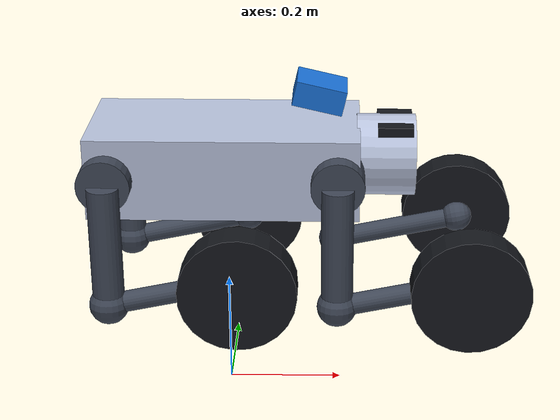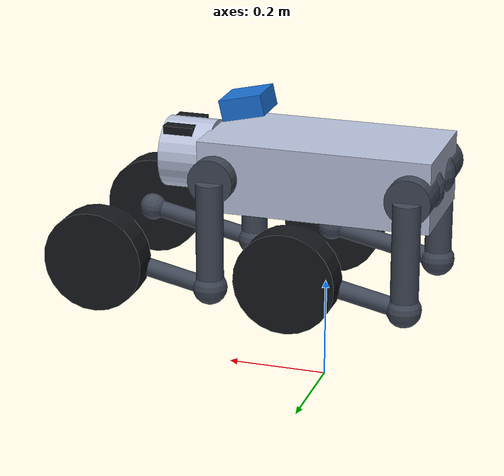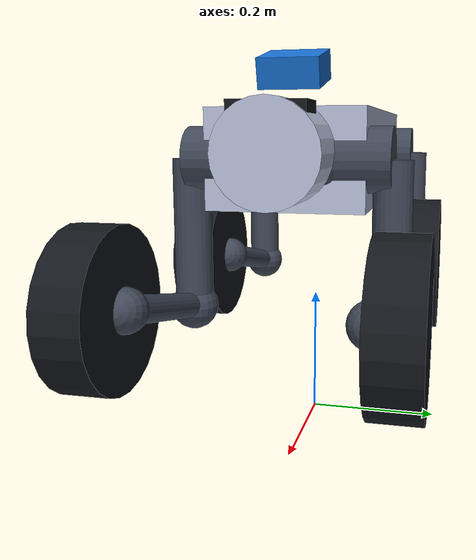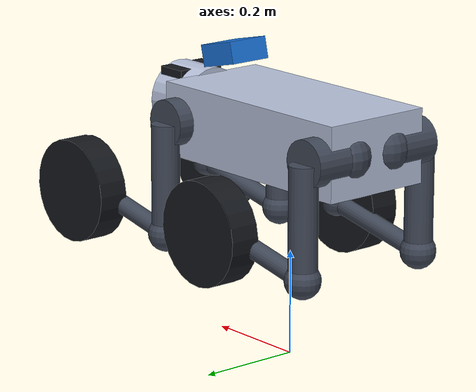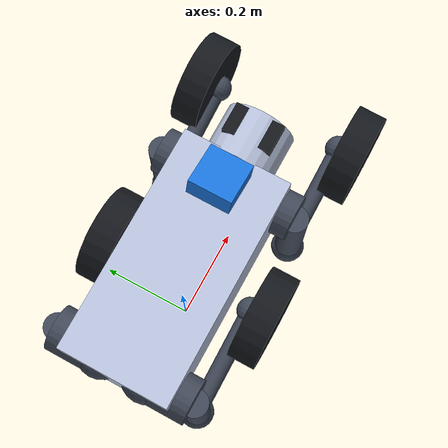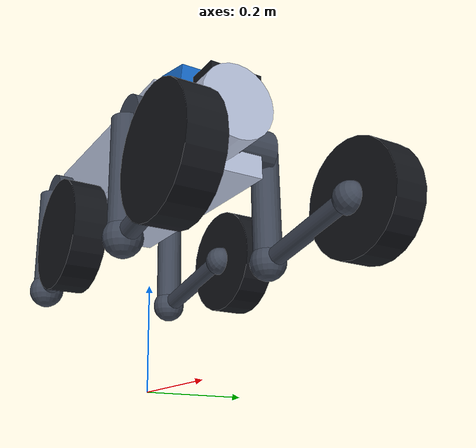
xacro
<?xml version="1.0"?>
<robot xmlns:xacro="http://www.ros.org/wiki/xacro" name="go2w_nav_sim">
  <xacro:arg name="camera" default="true"/>
  <xacro:arg name="depth" default="true"/>
  <xacro:arg name="physics" default="false"/>
  <xacro:arg name="control" default="true"/>
  <!-- false: lightweight stick visuals; true: detailed Go2-W reference meshes.
       Collision and inertial geometry remain lightweight in both modes. -->
  <xacro:arg name="official_visual" default="false"/>
  <xacro:property name="sim_pi" value="3.141592653589793"/>

  <material name="body"><color rgba="0.72 0.76 0.86 1"/></material>
  <material name="dark"><color rgba="0.08 0.09 0.11 1"/></material>
  <material name="leg"><color rgba="0.25 0.28 0.34 1"/></material>
  <material name="sensor"><color rgba="0.10 0.45 0.85 1"/></material>

  <xacro:macro name="box_inertial" params="mass x y z">
    <inertial><mass value="${mass}"/><origin xyz="0 0 0"/>
      <inertia ixx="${mass*(y*y+z*z)/12}" ixy="0" ixz="0"
               iyy="${mass*(x*x+z*z)/12}" iyz="0" izz="${mass*(x*x+y*y)/12}"/>
    </inertial>
  </xacro:macro>

  <xacro:macro name="cylinder_inertial" params="mass radius length">
    <inertial><mass value="${mass}"/><origin xyz="0 0 0"/>
      <inertia ixx="${mass*(3*radius*radius+length*length)/12}" ixy="0" ixz="0"
               iyy="${mass*(3*radius*radius+length*length)/12}" iyz="0"
               izz="${mass*radius*radius/2}"/>
    </inertial>
  </xacro:macro>

  <link name="base_footprint"/>
  <link name="base">
    <xacro:box_inertial mass="6.921" x="0.46" y="0.22" z="0.14"/>
    <xacro:unless value="$(arg official_visual)">
      <visual><geometry><box size="0.46 0.22 0.14"/></geometry><material name="body"/></visual>
    </xacro:unless>
    <xacro:if value="$(arg official_visual)">
      <visual><geometry><mesh filename="package://go2w_sim/meshes/go2w_official/base.dae"/></geometry></visual>
    </xacro:if>
    <collision><geometry><box size="0.46 0.22 0.14"/></geometry></collision>
  </link>
  <joint name="base_footprint_joint" type="fixed">
    <parent link="base_footprint"/><child link="base"/><origin xyz="0 0 0.43"/>
  </joint>

  <link name="Head_upper">
    <xacro:cylinder_inertial mass="0.08" radius="0.07" length="0.10"/>
    <xacro:unless value="$(arg official_visual)">
      <visual><origin rpy="0 ${sim_pi/2} 0"/><geometry><cylinder radius="0.07" length="0.10"/></geometry><material name="body"/></visual>
    </xacro:unless>
  </link>
  <joint name="Head_upper_joint" type="fixed">
    <parent link="base"/><child link="Head_upper"/><origin xyz="0.275 0 0.01"/>
  </joint>

  <xacro:macro name="go2w_leg" params="prefix x side rear">
    <link name="${prefix}_hip">
      <xacro:cylinder_inertial mass="0.30" radius="0.045" length="0.0955"/>
      <xacro:unless value="$(arg official_visual)">
        <visual><origin xyz="0 ${0.04775*side} 0" rpy="${sim_pi/2} 0 0"/>
          <geometry><cylinder radius="0.045" length="0.0955"/></geometry><material name="leg"/></visual>
        <visual><geometry><sphere radius="0.050"/></geometry><material name="leg"/></visual>
      </xacro:unless>
      <xacro:if value="$(arg official_visual)">
        <visual><origin rpy="${sim_pi*(1-side)/2} ${sim_pi*rear} 0"/>
          <geometry><mesh filename="package://go2w_sim/meshes/go2w_official/hip.dae"/></geometry></visual>
      </xacro:if>
    </link>
    <joint name="${prefix}_hip_joint" type="revolute">
      <parent link="base"/><child link="${prefix}_hip"/>
      <origin xyz="${x} ${0.0465*side} 0"/><axis xyz="1 0 0"/>
      <limit lower="-1.0472" upper="1.0472" effort="23.7" velocity="30.1"/>
      <dynamics damping="2.0" friction="0.5"/>
    </joint>

    <link name="${prefix}_thigh">
      <xacro:cylinder_inertial mass="0.55" radius="0.027" length="0.213"/>
      <xacro:unless value="$(arg official_visual)">
        <visual><origin xyz="0 0 -0.1065"/><geometry><cylinder radius="0.027" length="0.213"/></geometry><material name="leg"/></visual>
        <visual><origin xyz="0 0 -0.213"/><geometry><sphere radius="0.034"/></geometry><material name="leg"/></visual>
      </xacro:unless>
      <xacro:if value="$(arg official_visual)">
        <visual><geometry><mesh filename="package://go2w_sim/meshes/go2w_official/${'thigh.dae' if side > 0 else 'thigh_mirror.dae'}"/></geometry></visual>
      </xacro:if>
    </link>
    <joint name="${prefix}_thigh_joint" type="revolute">
      <parent link="${prefix}_hip"/><child link="${prefix}_thigh"/>
      <origin xyz="0 ${0.0955*side} 0"/><axis xyz="0 1 0"/>
      <limit lower="-1.5708" upper="3.4907" effort="23.7" velocity="30.1"/>
      <dynamics damping="2.0" friction="0.5"/>
    </joint>

    <link name="${prefix}_calf">
      <xacro:cylinder_inertial mass="0.22" radius="0.018" length="0.2264"/>
      <xacro:unless value="$(arg official_visual)">
        <visual><origin xyz="0 0 -0.1132"/><geometry><cylinder radius="0.018" length="0.2264"/></geometry><material name="leg"/></visual>
        <visual><origin xyz="0 0 -0.2264"/><geometry><sphere radius="0.028"/></geometry><material name="leg"/></visual>
      </xacro:unless>
      <xacro:if value="$(arg official_visual)">
        <visual><geometry><mesh filename="package://go2w_sim/meshes/go2w_official/${'calf.stl' if side > 0 else 'calf_mirror.stl'}"/></geometry><material name="body"/></visual>
      </xacro:if>
    </link>
    <joint name="${prefix}_calf_joint" type="revolute">
      <parent link="${prefix}_thigh"/><child link="${prefix}_calf"/>
      <origin xyz="0 0 -0.213"/><axis xyz="0 1 0"/>
      <limit lower="-2.7227" upper="-0.83776" effort="35.55" velocity="20.07"/>
      <dynamics damping="2.0" friction="0.5"/>
    </joint>

    <link name="${prefix}_foot">
      <xacro:cylinder_inertial mass="0.52" radius="0.10" length="0.06"/>
      <xacro:unless value="$(arg official_visual)">
        <visual><origin xyz="0 ${0.03*side} 0" rpy="${sim_pi/2} 0 0"/>
          <geometry><cylinder radius="0.10" length="0.06"/></geometry><material name="dark"/></visual>
      </xacro:unless>
      <xacro:if value="$(arg official_visual)">
        <visual><geometry><mesh filename="package://go2w_sim/meshes/go2w_official/${'left_wheel.dae' if side > 0 else 'right_wheel.dae'}"/></geometry></visual>
      </xacro:if>
      <collision><origin xyz="0 ${0.03*side} 0" rpy="${sim_pi/2} 0 0"/>
        <geometry><cylinder radius="0.10" length="0.06"/></geometry></collision>
    </link>
    <joint name="${prefix}_foot_joint" type="continuous">
      <parent link="${prefix}_calf"/><child link="${prefix}_foot"/>
      <origin xyz="0 0 -0.2264"/><axis xyz="0 1 0"/>
      <limit effort="23.7" velocity="30.1"/><dynamics damping="0.2" friction="0.05"/>
    </joint>

    <xacro:unless value="$(arg physics)">
      <gazebo reference="${prefix}_hip"><gravity>false</gravity></gazebo>
      <gazebo reference="${prefix}_thigh"><gravity>false</gravity></gazebo>
      <gazebo reference="${prefix}_calf"><gravity>false</gravity></gazebo>
    </xacro:unless>
    <gazebo reference="${prefix}_foot">
      <mu1>1.2</mu1><mu2>1.2</mu2><kp>100000</kp><kd>2</kd>
      <minDepth>0.001</minDepth><maxVel>0.1</maxVel>
    </gazebo>
  </xacro:macro>

  <xacro:go2w_leg prefix="FL" x="0.1934" side="1" rear="0"/>
  <xacro:go2w_leg prefix="FR" x="0.1934" side="-1" rear="0"/>
  <xacro:go2w_leg prefix="RL" x="-0.1934" side="1" rear="1"/>
  <xacro:go2w_leg prefix="RR" x="-0.1934" side="-1" rear="1"/>

  <link name="imu"><xacro:box_inertial mass="0.01" x="0.02" y="0.02" z="0.01"/></link>
  <joint name="imu_joint" type="fixed">
    <parent link="base"/><child link="imu"/><origin xyz="-0.02557 0 0.04232"/>
  </joint>

  <link name="livox_mid360_base">
    <xacro:box_inertial mass="0.265" x="0.086" y="0.086" z="0.042"/>
    <visual><geometry><box size="0.086 0.086 0.042"/></geometry><material name="sensor"/></visual>
  </link>
  <joint name="livox_mid360_base_joint" type="fixed">
    <parent link="imu"/><child link="livox_mid360_base"/><origin xyz="0.187 0 0.0803" rpy="0 0.2269 0"/>
  </joint>
  <link name="lidar_link"><xacro:box_inertial mass="0.001" x="0.01" y="0.01" z="0.01"/></link>
  <joint name="lidar_joint" type="fixed">
    <parent link="livox_mid360_base"/><child link="lidar_link"/>
    <!-- Keep the simplified MID-360 housing pitched like the reference model,
         but level the 2-D navigation scan so it does not intersect the floor. -->
    <origin rpy="0 -0.2269 0"/>
  </joint>

  <xacro:if value="$(arg camera)">
    <link name="camera_link">
      <xacro:box_inertial mass="0.08" x="0.06" y="0.10" z="0.04"/>
      <visual><geometry><box size="0.06 0.10 0.04"/></geometry><material name="dark"/></visual>
    </link>
    <joint name="camera_joint" type="fixed">
      <parent link="base"/><child link="camera_link"/><origin xyz="0.29 0 0.055"/>
    </joint>
    <link name="camera_color_optical_frame"><xacro:box_inertial mass="0.001" x="0.01" y="0.01" z="0.01"/></link>
    <joint name="camera_optical_joint" type="fixed">
      <parent link="camera_link"/><child link="camera_color_optical_frame"/>
      <origin rpy="-${sim_pi/2} 0 -${sim_pi/2}"/>
    </joint>
  </xacro:if>

  <xacro:unless value="$(arg physics)">
    <gazebo reference="base_footprint"><gravity>false</gravity></gazebo>
    <gazebo reference="base"><gravity>false</gravity><material>Gazebo/White</material></gazebo>
  </xacro:unless>
  <xacro:if value="$(arg physics)">
    <gazebo reference="base"><material>Gazebo/White</material></gazebo>
  </xacro:if>

  <gazebo reference="lidar_link">
    <sensor name="lidar" type="ray">
      <always_on>true</always_on><update_rate>10</update_rate><visualize>false</visualize>
      <ray><scan><horizontal><samples>240</samples><resolution>1</resolution>
        <min_angle>-${sim_pi}</min_angle><max_angle>${sim_pi}</max_angle></horizontal></scan>
        <range><min>0.10</min><max>12.0</max><resolution>0.02</resolution></range></ray>
      <plugin name="gazebo_ros_laser" filename="libgazebo_ros_laser.so">
        <topicName>/scan</topicName><frameName>lidar_link</frameName>
      </plugin>
    </sensor>
  </gazebo>

  <xacro:if value="$(arg camera)">
    <gazebo reference="camera_link">
      <sensor name="rgbd_camera" type="depth">
        <always_on>true</always_on><update_rate>15</update_rate><visualize>false</visualize>
        <camera><horizontal_fov>1.20</horizontal_fov>
          <image><width>424</width><height>240</height><format>R8G8B8</format></image>
          <clip><near>0.10</near><far>12.0</far></clip></camera>
        <plugin name="gazebo_ros_rgbd" filename="libgazebo_ros_openni_kinect.so">
          <cameraName>camera</cameraName><frameName>camera_color_optical_frame</frameName>
          <imageTopicName>color/image_raw</imageTopicName>
          <cameraInfoTopicName>color/camera_info</cameraInfoTopicName>
          <depthImageTopicName>depth/image_raw</depthImageTopicName>
          <depthImageCameraInfoTopicName>depth/camera_info</depthImageCameraInfoTopicName>
          <pointCloudTopicName>depth/points</pointCloudTopicName>
          <pointCloudCutoff>0.15</pointCloudCutoff><pointCloudCutoffMax>8.0</pointCloudCutoffMax>
        </plugin>
      </sensor>
    </gazebo>
  </xacro:if>

  <xacro:unless value="$(arg physics)">
   <gazebo>
    <plugin name="go2w_planar" filename="libgo2w_planar_plugin.so">
      <commandTopic>/cmd_vel</commandTopic><odometryTopic>/odom</odometryTopic>
      <postureTopic>/go2w/posture_cmd</postureTopic>
      <resetTopic>/go2w/sim_reset</resetTopic>
      <spawnRegionCenterX>-2.0</spawnRegionCenterX>
      <spawnRegionCenterY>0.0</spawnRegionCenterY>
      <spawnRegionSize>2.0</spawnRegionSize>
      <randomYaw>true</randomYaw>
      <odometryFrame>odom</odometryFrame><robotBaseFrame>base_footprint</robotBaseFrame>
      <maxLinear>1.2</maxLinear><maxAngular>1.8</maxAngular>
      <acceleration>1.8</acceleration><angularAcceleration>3.0</angularAcceleration>
      <commandTimeout>0.5</commandTimeout><publishTf>true</publishTf>
    </plugin>
   </gazebo>
  </xacro:unless>
  <xacro:if value="$(arg physics)">
   <xacro:if value="$(arg control)">
    <gazebo>
     <plugin name="go2w_dynamics" filename="libgo2w_dynamics_plugin.so">
       <commandTopic>/cmd_vel</commandTopic><postureTopic>/go2w/posture_cmd</postureTopic>
       <resetTopic>/go2w/sim_reset</resetTopic>
       <spawnRegionCenterX>-2.0</spawnRegionCenterX>
       <spawnRegionCenterY>0.0</spawnRegionCenterY>
       <spawnRegionSize>2.0</spawnRegionSize>
       <randomYaw>true</randomYaw>
       <odometryTopic>/odom</odometryTopic><odometryFrame>odom</odometryFrame>
       <robotBaseFrame>base_footprint</robotBaseFrame><publishTf>true</publishTf>
       <wheelRadius>0.10</wheelRadius><trackWidth>0.285</trackWidth>
       <maxLinear>1.0</maxLinear><maxAngular>1.5</maxAngular><commandTimeout>0.5</commandTimeout>
     </plugin>
    </gazebo>
   </xacro:if>
  </xacro:if>
  <gazebo>
    <plugin name="joint_states" filename="libgazebo_ros_joint_state_publisher.so">
      <updateRate>20</updateRate>
      <jointName>FL_hip_joint,FL_thigh_joint,FL_calf_joint,FL_foot_joint,FR_hip_joint,FR_thigh_joint,FR_calf_joint,FR_foot_joint,RL_hip_joint,RL_thigh_joint,RL_calf_joint,RL_foot_joint,RR_hip_joint,RR_thigh_joint,RR_calf_joint,RR_foot_joint</jointName>
    </plugin>
  </gazebo>
</robot>
